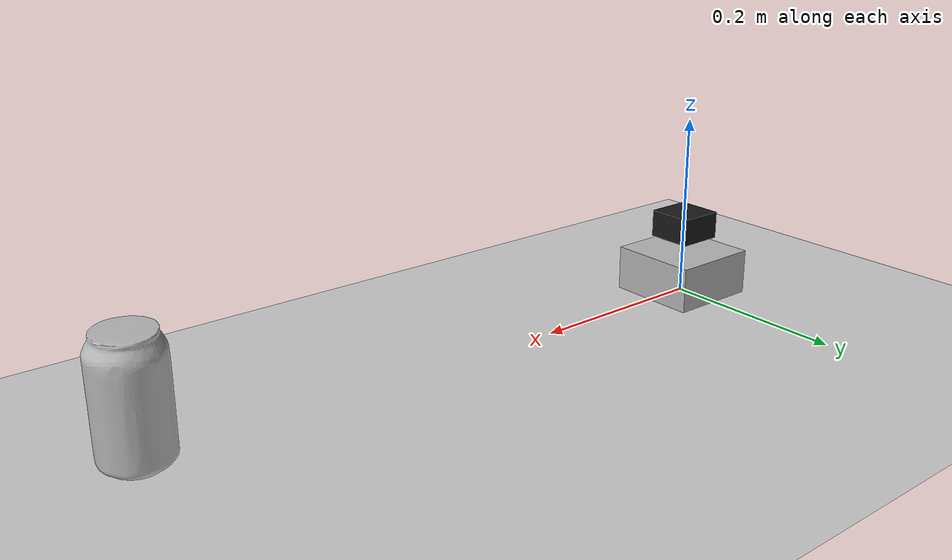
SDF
<sdf version="1.7">
 <world name="test_world">
  <light name="sun" type="directional">
   <pose>0 0 10 0 -0 0</pose>
   <diffuse>0.8 0.8 0.8 1</diffuse>
   <specular>0.2 0.2 0.2 1</specular>
   <attenuation>
    <range>1000</range>
    <constant>0.9</constant>
    <linear>0.01</linear>
    <quadratic>0.001</quadratic>
   </attenuation>
   <direction>-0.5 0.1 -0.9</direction>
   <spot><inner_angle>0</inner_angle><outer_angle>0</outer_angle><falloff>0</falloff></spot>
  </light>
  <model name="ground_plane">
   <static>1</static>
   <link name="link">
    <collision name="collision">
     <geometry><plane><normal>0 0 1</normal><size>100 100</size></plane></geometry>
     <surface>
      <contact><collide_bitmask>65535</collide_bitmask></contact>
      <friction><ode><mu>100</mu><mu2>50</mu2></ode></friction>
     </surface>
    </collision>
    <visual name="visual">
     <cast_shadows>0</cast_shadows>
     <geometry><plane><normal>0 0 1</normal><size>100 100</size></plane></geometry>
     <material>
      <script><uri>file://media/materials/scripts/gazebo.material</uri><name>Gazebo/Grey</name></script>
     </material>
    </visual>
   </link>
  </model>
  <gravity>0 0 -9.8</gravity>
  <magnetic_field>6e-06 2.3e-05 -4.2e-05</magnetic_field>
  <atmosphere type="adiabatic"/>
  <physics type="ode">
   <max_step_size>0.001</max_step_size>
   <real_time_factor>1</real_time_factor>
   <real_time_update_rate>1000</real_time_update_rate>
  </physics>
  <scene><ambient>0.4 0.4 0.4 1</ambient><background>0.7 0.7 0.7 1</background><shadows>1</shadows></scene>
  <audio><device>default</device></audio>
  <spherical_coordinates>
   <surface_model>EARTH_WGS84</surface_model>
   <latitude_deg>0</latitude_deg>
   <longitude_deg>0</longitude_deg>
   <elevation>0</elevation>
   <heading_deg>0</heading_deg>
  </spherical_coordinates>
  <model name="camera_bot_rs">
   <static>0</static>
   <link name="base_link">
    <pose>0 0 0.025 0 -0 0</pose>
    <inertial>
     <mass>0.5</mass>
     <inertia><ixx>0.001</ixx><iyy>0.001</iyy><izz>0.001</izz><ixy>0</ixy><ixz>0</ixz><iyz>0</iyz></inertia>
    </inertial>
    <collision name="collision"><geometry><box><size>0.1 0.1 0.05</size></box></geometry></collision>
    <visual name="visual"><geometry><box><size>0.1 0.1 0.05</size></box></geometry></visual>
   </link>
   <link name="camera_link">
    <pose>0 0 0.08 0 -0 0</pose>
    <visual name="camera_visual">
     <geometry><box><size>0.05 0.05 0.03</size></box></geometry>
     <material><ambient>0.1 0.1 0.1 1</ambient><diffuse>0.1 0.1 0.1 1</diffuse></material>
    </visual>
    <collision name="camera_collision"><geometry><box><size>0.05 0.05 0.03</size></box></geometry></collision>
    <sensor name="rgbd_camera" type="depth">
     <always_on>1</always_on>
     <update_rate>30</update_rate>
     <camera>
      <horizontal_fov>1.57</horizontal_fov>
      <image><width>640</width><height>480</height><format>R8G8B8</format></image>
      <clip><near>0.1</near><far>10</far></clip>
      <noise><type>gaussian</type><mean>0</mean><stddev>0.01</stddev></noise>
     </camera>
     <plugin name="rgbd_camera_controller" filename="libgazebo_ros_camera.so">
      <camera_name>camera</camera_name>
      <frame_name>camera_link</frame_name>
      <image_topic_name>color/image_raw</image_topic_name>
      <camera_info_topic_name>color/camera_info</camera_info_topic_name>
      <depth_image_topic_name>depth/image_raw</depth_image_topic_name>
      <depth_camera_info_topic_name>depth/camera_info</depth_camera_info_topic_name>
      <point_cloud>1</point_cloud>
      <point_cloud_topic_name>depth/points</point_cloud_topic_name>
     </plugin>
    </sensor>
    <inertial>
     <inertia><ixx>1</ixx><ixy>0</ixy><ixz>0</ixz><iyy>1</iyy><iyz>0</iyz><izz>1</izz></inertia>
     <mass>1</mass>
    </inertial>
   </link>
   <joint name="camera_joint" type="fixed"><parent>base_link</parent><child>camera_link</child></joint>
   <pose>-0 6.1e-05 -9e-06 -1e-06 2e-06 0.000309</pose>
  </model>
  <model name="coke_can">
   <link name="link">
    <inertial>
     <pose>0 0 0.06 0 -0 0</pose>
     <mass>0.39</mass>
     <inertia>
      <ixx>0.00055575</ixx>
      <ixy>0</ixy>
      <ixz>0</ixz>
      <iyy>0.00055575</iyy>
      <iyz>0</iyz>
      <izz>0.0001755</izz>
     </inertia>
    </inertial>
    <collision name="collision">
     <pose>0.003937 0.004724 -0.18 0 -0 0</pose>
     <geometry><mesh><uri>model://coke_can/meshes/coke_can.dae</uri></mesh></geometry>
     <surface>
      <friction><ode><mu>1</mu><mu2>1</mu2></ode></friction>
      <contact><ode><kp>1e+07</kp><kd>1</kd><min_depth>0.001</min_depth><max_vel>0.1</max_vel></ode></contact>
     </surface>
    </collision>
    <visual name="visual">
     <pose>0.003937 0.004724 -0.18 0 -0 0</pose>
     <geometry><mesh><uri>model://coke_can/meshes/coke_can.dae</uri></mesh></geometry>
    </visual>
   </link>
   <pose>0.638603 -0.016033 -0.003016 -0.056899 0.003946 -0.001644</pose>
  </model>
 </world>
</sdf>
